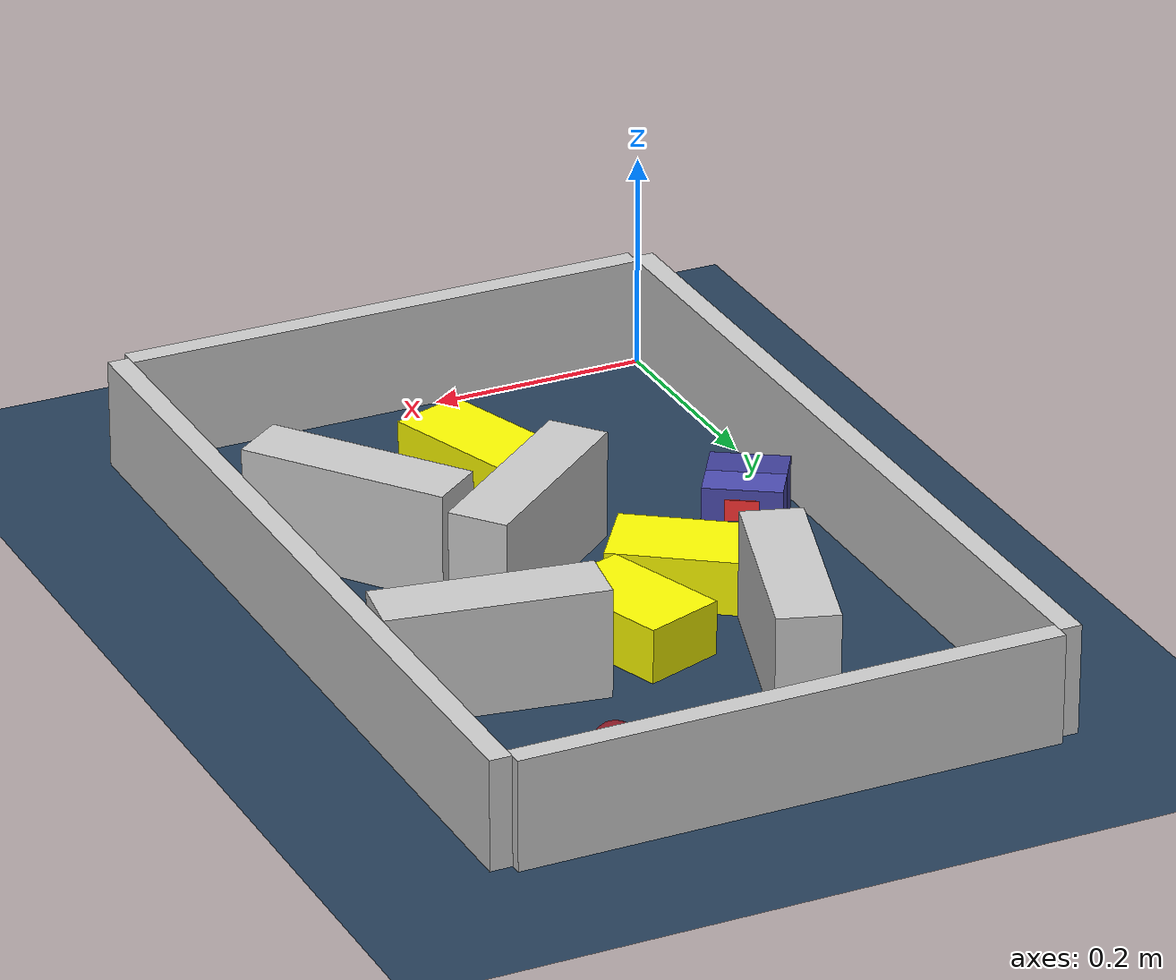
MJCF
<?xml version='1.0' encoding='utf-8'?>
<mujoco model="real_buildable">
  <compiler angle="degree" />
  <option timestep="0.002" integrator="implicitfast" iterations="100" cone="elliptic" />
  <default>
    <geom density="1" />
  </default>
  <asset>
    <texture builtin="gradient" height="3072" rgb1="0.3 0.5 0.7" rgb2="0 0 0" type="skybox" width="512" />
    <texture builtin="checker" height="300" mark="edge" markrgb="0.8 0.8 0.8" name="groundplane" rgb1="0.2 0.3 0.4" rgb2="0.1 0.2 0.3" type="2d" width="300" />
    <material name="groundplane" reflectance="0.2" texrepeat="5 5" texture="groundplane" texuniform="true" />
  </asset>
  <worldbody>
    <light dir="0 0 -1" directional="true" pos="0 0 1.5" />
    <geom name="floor" type="plane" condim="4" friction="0.5 0.005 0.001" material="groundplane" size="0 0 0.05" />
    <body name="walls">
      <geom name="wall_boundary_left" type="box" condim="4" friction="1.0 0.005 0.0001" rgba="0.8 0.8 0.8 1" pos="-0.010000 0.387500 0.050000" euler="0 0 0.000000" size="0.010000 0.397500 0.050000" />
      <geom name="wall_boundary_right" type="box" condim="4" friction="1.0 0.005 0.0001" rgba="0.8 0.8 0.8 1" pos="0.500000 0.387500 0.050000" euler="0 0 0.000000" size="0.010000 0.397500 0.050000" />
      <geom name="wall_boundary_bottom" type="box" condim="4" friction="1.0 0.005 0.0001" rgba="0.8 0.8 0.8 1" pos="0.245000 -0.010000 0.050000" euler="0 0 0.000000" size="0.245000 0.010000 0.050000" />
      <geom name="wall_boundary_top" type="box" condim="4" friction="1.0 0.005 0.0001" rgba="0.8 0.8 0.8 1" pos="0.245000 0.785000 0.050000" euler="0 0 0.000000" size="0.245000 0.010000 0.050000" />
      <geom name="wall_inner_1" type="box" condim="4" friction="1.0 0.005 0.0001" rgba="0.8 0.8 0.8 1" pos="0.268119 0.341436 0.050000" euler="0 0 38.803597" size="0.097500 0.027500 0.050000" />
      <geom name="wall_inner_2" type="box" condim="4" friction="1.0 0.005 0.0001" rgba="0.8 0.8 0.8 1" pos="0.390655 0.258899 0.050000" euler="0 0 -53.029884" size="0.097500 0.027500 0.050000" />
      <geom name="wall_inner_3" type="box" condim="4" friction="1.0 0.005 0.0001" rgba="0.8 0.8 0.8 1" pos="0.389000 0.524000 0.050000" euler="0 0 170.900000" size="0.097500 0.027500 0.050000" />
      <geom name="wall_inner_4" type="box" condim="4" friction="1.0 0.005 0.0001" rgba="0.8 0.8 0.8 1" pos="0.144000 0.585000 0.050000" euler="0 0 72.200000" size="0.097500 0.027500 0.050000" />
    </body>
    <body name="car" pos="0.083611670597414742 0.38520044937860037 0.01" quat="0.87661053482455797 0 0 0.48120055095001962">
      <freejoint name="car_freejoint" />
      <inertial pos="0 0 0.0375" mass="0.35" diaginertia="0.000266 0.000266 0.000286" />
      <geom name="front_chassis_collision" type="box" pos="0.0175 0 0.0375" size="0.0175 0.035 0.0325" rgba="0.3 0.3 0.7 1" />
      <geom name="rear_chassis_collision" type="box" pos="-0.0175 0 0.0375" size="0.0175 0.035 0.0325" rgba="0.25 0.25 0.6 1" />
      <geom name="front_marker" type="box" pos="0.034 0 0.0505" size="0.002 0.015 0.01" rgba="1 0.2 0.2 1" contype="0" conaffinity="0" />
      <body name="rear_support_body" pos="-0.03 0 0.0025">
        <joint name="rear_caster_joint" type="ball" damping="0.0001" />
        <inertial pos="0 0 0" mass="0.025" diaginertia="0.000001 0.000001 0.000001" />
        <geom name="rear_support" type="sphere" pos="0 0 0" size="0.0025" friction="0 0 0" rgba="0.7 0.1 0.1 1" />
      </body>
      <body name="front_support_body" pos="0.03 0 0.0025">
        <joint name="front_caster_joint" type="ball" damping="0.0001" />
        <inertial pos="0 0 0" mass="0.025" diaginertia="0.000001 0.000001 0.000001" />
        <geom name="front_support" type="sphere" pos="0 0 0" size="0.0025" friction="0 0 0" rgba="0.1 0.7 0.1 1" />
      </body>
      <body name="left_wheel" pos="0 0.0375 0.015">
        <inertial pos="0 0 0" mass="0.05" diaginertia="0.000003 0.000006 0.000003" />
        <joint name="left_wheel_joint" type="hinge" axis="0 1 0" damping="0.01" armature="0.0001" />
        <geom name="left_wheel_collision" type="cylinder" size="0.015 0.0005" euler="90 0 0" rgba="0.1 0.1 0.1 1" />
      </body>
      <body name="right_wheel" pos="0 -0.0375 0.015">
        <inertial pos="0 0 0" mass="0.05" diaginertia="0.000003 0.000006 0.000003" />
        <joint name="right_wheel_joint" type="hinge" axis="0 1 0" damping="0.01" armature="0.0001" />
        <geom name="right_wheel_collision" type="cylinder" size="0.015 0.0005" euler="90 0 0" rgba="0.1 0.1 0.1 1" />
      </body>
    </body>
    <body name="obstacle_0_movable">
      <geom name="obstacle_0_movable" condim="4" pos="0.16276993958368974 0.42016223282570375 0.025000000000000001" friction="1 0.005 0.0001" rgba="1 1 0 1" size="0.037500 0.060000 0.025000" type="box" mass="0.1" quat="0.88722116136050888 0 0 0.46134435168766286" />
      <joint type="free" />
    </body>
    <body name="obstacle_1_movable">
      <geom name="obstacle_1_movable" condim="4" pos="0.24112015075030446 0.49103212971001042 0.025000000000000001" friction="1 0.005 0.0001" rgba="1 1 0 1" size="0.037500 0.060000 0.025000" type="box" mass="0.1" quat="0.98619367644603007 0 0 0.16559599191364208" />
      <joint type="free" />
    </body>
    <body name="obstacle_2_movable">
      <geom name="obstacle_2_movable" condim="4" pos="0.22213200000000019 0.15388500000000005 0.02" friction="1 0.005 0.0001" rgba="1 1 0 1" size="0.035000 0.075000 0.020000" type="box" mass="0.1" quat="0.98658857451371573 0 0 0.16322678897470941" />
      <joint type="free" />
    </body>
    <site name="goal" type="sphere" pos="0.330000 0.640000 0.0" size="0.02" rgba="1 0 0 0.5" />
  </worldbody>
  <actuator>
    <velocity name="left_wheel_drive" joint="left_wheel_joint" ctrlrange="-25 25" kv="0.75" forcerange="-0.5 0.5" />
    <velocity name="right_wheel_drive" joint="right_wheel_joint" ctrlrange="-25 25" kv="0.75" forcerange="-0.5 0.5" />
  </actuator>
</mujoco>
